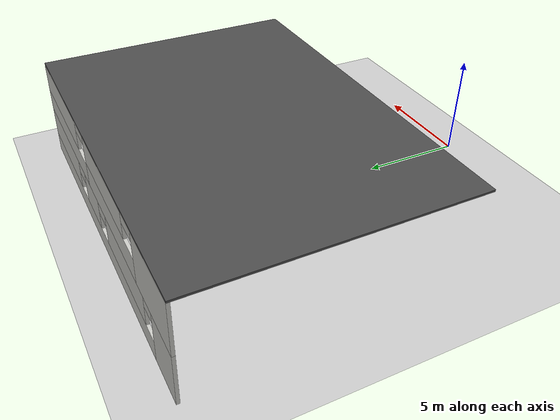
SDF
<sdf version="1.6">
 <world name="default">
  <model name="ground_plane">
   <static>1</static>
   <link name="link">
    <collision name="collision">
     <geometry><plane><normal>0 0 1</normal><size>100 100</size></plane></geometry>
     <surface>
      <contact><collide_bitmask>65535</collide_bitmask></contact>
      <friction><ode><mu>100</mu><mu2>50</mu2></ode></friction>
     </surface>
    </collision>
    <visual name="visual">
     <cast_shadows>0</cast_shadows>
     <geometry><plane><normal>0 0 1</normal><size>100 100</size></plane></geometry>
     <material>
      <script><uri>file://media/materials/scripts/gazebo.material</uri><name>Gazebo/Grey</name></script>
     </material>
    </visual>
   </link>
  </model>
  <model name="asphalt_plane">
   <static>1</static>
   <link name="link">
    <collision name="collision"><geometry><box><size>18.0246 12.9845 0.1</size></box></geometry></collision>
    <visual name="visual">
     <cast_shadows>0</cast_shadows>
     <geometry><box><size>18.0246 12.9845 0.1</size></box></geometry>
     <material>
      <script>
       <uri>model://asphalt_plane/materials/scripts</uri>
       <uri>model://asphalt_plane/materials/textures</uri>
       <name>vrc/asphalt</name>
      </script>
     </material>
    </visual>
   </link>
   <pose>0.009253 12.617 5.05625 0 -0 0</pose>
  </model>
  <model name="Indoor_Scenario1">
   <pose>0.016123 12.6195 0 0 -0 0</pose>
   <link name="Wall_2">
    <pose>-0 6.425 0 0 -0 0</pose>
    <visual name="Wall_2_Visual_0">
     <pose>-7.94017 0 1.25 0 -0 0</pose>
     <geometry><box><size>2.11966 0.15 2.5</size></box></geometry>
     <material>
      <script><uri>file://media/materials/scripts/gazebo.material</uri><name>Gazebo/CeilingTiled</name></script>
      <ambient>0.647059 0.505882 0.309804 1</ambient>
     </material>
     <meta><layer>0</layer></meta>
    </visual>
    <collision name="Wall_2_Collision_0">
     <geometry><box><size>2.11966 0.15 2.5</size></box></geometry>
     <pose>-7.94017 0 1.25 0 -0 0</pose>
    </collision>
    <visual name="Wall_2_Visual_1">
     <pose>1.05983 0 0.5 0 -0 0</pose>
     <geometry><box><size>15.8803 0.15 1</size></box></geometry>
     <material>
      <script><uri>file://media/materials/scripts/gazebo.material</uri><name>Gazebo/CeilingTiled</name></script>
      <ambient>0.647059 0.505882 0.309804 1</ambient>
     </material>
     <meta><layer>0</layer></meta>
    </visual>
    <collision name="Wall_2_Collision_1">
     <geometry><box><size>15.8803 0.15 1</size></box></geometry>
     <pose>1.05983 0 0.5 0 -0 0</pose>
    </collision>
    <visual name="Wall_2_Visual_2">
     <pose>-3.45191 0 1.75 0 -0 0</pose>
     <geometry><box><size>5.05687 0.15 1.5</size></box></geometry>
     <material>
      <script><uri>file://media/materials/scripts/gazebo.material</uri><name>Gazebo/CeilingTiled</name></script>
      <ambient>0.647059 0.505882 0.309804 1</ambient>
     </material>
     <meta><layer>0</layer></meta>
    </visual>
    <collision name="Wall_2_Collision_2">
     <geometry><box><size>5.05687 0.15 1.5</size></box></geometry>
     <pose>-3.45191 0 1.75 0 -0 0</pose>
    </collision>
    <visual name="Wall_2_Visual_3">
     <pose>1.30899 0 1.75 0 -0 0</pose>
     <geometry><box><size>2.26492 0.15 1.5</size></box></geometry>
     <material>
      <script><uri>file://media/materials/scripts/gazebo.material</uri><name>Gazebo/CeilingTiled</name></script>
      <ambient>0.647059 0.505882 0.309804 1</ambient>
     </material>
     <meta><layer>0</layer></meta>
    </visual>
    <collision name="Wall_2_Collision_3">
     <geometry><box><size>2.26492 0.15 1.5</size></box></geometry>
     <pose>1.30899 0 1.75 0 -0 0</pose>
    </collision>
    <visual name="Wall_2_Visual_4">
     <pose>6.27072 0 1.75 0 -0 0</pose>
     <geometry><box><size>5.45855 0.15 1.5</size></box></geometry>
     <material>
      <script><uri>file://media/materials/scripts/gazebo.material</uri><name>Gazebo/CeilingTiled</name></script>
      <ambient>0.647059 0.505882 0.309804 1</ambient>
     </material>
     <meta><layer>0</layer></meta>
    </visual>
    <collision name="Wall_2_Collision_4">
     <geometry><box><size>5.45855 0.15 1.5</size></box></geometry>
     <pose>6.27072 0 1.75 0 -0 0</pose>
    </collision>
    <visual name="Wall_2_Visual_5">
     <pose>-0.373475 0 1 0 -0 0</pose>
     <geometry><box><size>1.1 0.15 0.01</size></box></geometry>
     <material>
      <script><uri>file://media/materials/scripts/gazebo.material</uri><name>Gazebo/CeilingTiled</name></script>
      <ambient>0.647059 0.505882 0.309804 1</ambient>
     </material>
     <meta><layer>0</layer></meta>
    </visual>
    <collision name="Wall_2_Collision_5">
     <geometry><box><size>1.1 0.15 0.01</size></box></geometry>
     <pose>-0.373475 0 1 0 -0 0</pose>
    </collision>
    <visual name="Wall_2_Visual_6">
     <pose>2.99145 0 1 0 -0 0</pose>
     <geometry><box><size>1.1 0.15 0.01</size></box></geometry>
     <material>
      <script><uri>file://media/materials/scripts/gazebo.material</uri><name>Gazebo/CeilingTiled</name></script>
      <ambient>0.647059 0.505882 0.309804 1</ambient>
     </material>
     <meta><layer>0</layer></meta>
    </visual>
    <collision name="Wall_2_Collision_6">
     <geometry><box><size>1.1 0.15 0.01</size></box></geometry>
     <pose>2.99145 0 1 0 -0 0</pose>
    </collision>
    <visual name="Wall_2_Visual_7">
     <pose>-0.373475 0 2.2 0 -0 0</pose>
     <geometry><box><size>1.1 0.15 0.6</size></box></geometry>
     <material>
      <script><uri>file://media/materials/scripts/gazebo.material</uri><name>Gazebo/CeilingTiled</name></script>
      <ambient>0.647059 0.505882 0.309804 1</ambient>
     </material>
     <meta><layer>0</layer></meta>
    </visual>
    <collision name="Wall_2_Collision_7">
     <geometry><box><size>1.1 0.15 0.6</size></box></geometry>
     <pose>-0.373475 0 2.2 0 -0 0</pose>
    </collision>
    <visual name="Wall_2_Visual_8">
     <pose>2.99145 0 2.2 0 -0 0</pose>
     <geometry><box><size>1.1 0.15 0.6</size></box></geometry>
     <material>
      <script><uri>file://media/materials/scripts/gazebo.material</uri><name>Gazebo/CeilingTiled</name></script>
      <ambient>0.647059 0.505882 0.309804 1</ambient>
     </material>
     <meta><layer>0</layer></meta>
    </visual>
    <collision name="Wall_2_Collision_8">
     <geometry><box><size>1.1 0.15 0.6</size></box></geometry>
     <pose>2.99145 0 2.2 0 -0 0</pose>
    </collision>
    <visual name="Wall_2_Visual_9">
     <pose>-6.43034 0 2.25 0 -0 0</pose>
     <geometry><box><size>0.9 0.15 0.5</size></box></geometry>
     <material>
      <script><uri>file://media/materials/scripts/gazebo.material</uri><name>Gazebo/CeilingTiled</name></script>
      <ambient>0.647059 0.505882 0.309804 1</ambient>
     </material>
     <meta><layer>0</layer></meta>
    </visual>
    <collision name="Wall_2_Collision_9">
     <geometry><box><size>0.9 0.15 0.5</size></box></geometry>
     <pose>-6.43034 0 2.25 0 -0 0</pose>
    </collision>
   </link>
   <link name="Wall_38">
    <collision name="Wall_38_Collision">
     <geometry><box><size>2 0.15 2.5</size></box></geometry>
     <pose>0 0 1.25 0 -0 0</pose>
    </collision>
    <visual name="Wall_38_Visual">
     <pose>0 0 1.25 0 -0 0</pose>
     <geometry><box><size>2 0.15 2.5</size></box></geometry>
     <material>
      <script><uri>file://media/materials/scripts/gazebo.material</uri><name>Gazebo/CeilingTiled</name></script>
      <ambient>1 1 1 1</ambient>
     </material>
     <meta><layer>0</layer></meta>
    </visual>
    <pose>3.62002 2.50441 0 0 -0 3.14159</pose>
   </link>
   <link name="Wall_56">
    <pose>-0 6.425 2.5 0 -0 0</pose>
    <visual name="Wall_56_Visual_0">
     <pose>-7.13278 0 1.25 0 -0 0</pose>
     <geometry><box><size>3.73445 0.15 2.5</size></box></geometry>
     <material>
      <script><uri>file://media/materials/scripts/gazebo.material</uri><name>Gazebo/CeilingTiled</name></script>
      <ambient>0.647059 0.505882 0.305882 1</ambient>
     </material>
     <meta><layer>1</layer></meta>
    </visual>
    <collision name="Wall_56_Collision_0">
     <geometry><box><size>3.73445 0.15 2.5</size></box></geometry>
     <pose>-7.13278 0 1.25 0 -0 0</pose>
    </collision>
    <visual name="Wall_56_Visual_1">
     <pose>-1.88131 0 0.6 0 -0 0</pose>
     <geometry><box><size>6.7685 0.15 1.2</size></box></geometry>
     <material>
      <script><uri>file://media/materials/scripts/gazebo.material</uri><name>Gazebo/CeilingTiled</name></script>
      <ambient>0.647059 0.505882 0.305882 1</ambient>
     </material>
     <meta><layer>1</layer></meta>
    </visual>
    <collision name="Wall_56_Collision_1">
     <geometry><box><size>6.7685 0.15 1.2</size></box></geometry>
     <pose>-1.88131 0 0.6 0 -0 0</pose>
    </collision>
    <visual name="Wall_56_Visual_2">
     <pose>5.25147 0 0.55 0 -0 0</pose>
     <geometry><box><size>7.49705 0.15 1.1</size></box></geometry>
     <material>
      <script><uri>file://media/materials/scripts/gazebo.material</uri><name>Gazebo/CeilingTiled</name></script>
      <ambient>0.647059 0.505882 0.305882 1</ambient>
     </material>
     <meta><layer>1</layer></meta>
    </visual>
    <collision name="Wall_56_Collision_2">
     <geometry><box><size>7.49705 0.15 1.1</size></box></geometry>
     <pose>5.25147 0 0.55 0 -0 0</pose>
    </collision>
    <visual name="Wall_56_Visual_3">
     <pose>5.90147 0 1.8 0 -0 0</pose>
     <geometry><box><size>6.19705 0.15 1.4</size></box></geometry>
     <material>
      <script><uri>file://media/materials/scripts/gazebo.material</uri><name>Gazebo/CeilingTiled</name></script>
      <ambient>0.647059 0.505882 0.305882 1</ambient>
     </material>
     <meta><layer>1</layer></meta>
    </visual>
    <collision name="Wall_56_Collision_3">
     <geometry><box><size>6.19705 0.15 1.4</size></box></geometry>
     <pose>5.90147 0 1.8 0 -0 0</pose>
    </collision>
    <visual name="Wall_56_Visual_4">
     <pose>-1.2813 0 1.85 0 -0 0</pose>
     <geometry><box><size>5.5685 0.15 1.3</size></box></geometry>
     <material>
      <script><uri>file://media/materials/scripts/gazebo.material</uri><name>Gazebo/CeilingTiled</name></script>
      <ambient>0.647059 0.505882 0.305882 1</ambient>
     </material>
     <meta><layer>1</layer></meta>
    </visual>
    <collision name="Wall_56_Collision_4">
     <geometry><box><size>5.5685 0.15 1.3</size></box></geometry>
     <pose>-1.2813 0 1.85 0 -0 0</pose>
    </collision>
    <visual name="Wall_56_Visual_5">
     <pose>-4.66556 0 2.25 0 -0 0</pose>
     <geometry><box><size>1.2 0.15 0.5</size></box></geometry>
     <material>
      <script><uri>file://media/materials/scripts/gazebo.material</uri><name>Gazebo/CeilingTiled</name></script>
      <ambient>0.647059 0.505882 0.305882 1</ambient>
     </material>
     <meta><layer>1</layer></meta>
    </visual>
    <collision name="Wall_56_Collision_5">
     <geometry><box><size>1.2 0.15 0.5</size></box></geometry>
     <pose>-4.66556 0 2.25 0 -0 0</pose>
    </collision>
    <visual name="Wall_56_Visual_6">
     <pose>2.15295 0 2.3 0 -0 0</pose>
     <geometry><box><size>1.3 0.15 0.4</size></box></geometry>
     <material>
      <script><uri>file://media/materials/scripts/gazebo.material</uri><name>Gazebo/CeilingTiled</name></script>
      <ambient>0.647059 0.505882 0.305882 1</ambient>
     </material>
     <meta><layer>1</layer></meta>
    </visual>
    <collision name="Wall_56_Collision_6">
     <geometry><box><size>1.3 0.15 0.4</size></box></geometry>
     <pose>2.15295 0 2.3 0 -0 0</pose>
    </collision>
   </link>
   <link name="Wall_93">
    <collision name="Wall_93_Collision">
     <geometry><box><size>2.25 0.15 2.5</size></box></geometry>
     <pose>0 0 1.25 0 -0 0</pose>
    </collision>
    <visual name="Wall_93_Visual">
     <pose>0 0 1.25 0 -0 0</pose>
     <geometry><box><size>2.25 0.15 2.5</size></box></geometry>
     <material>
      <script><uri>file://media/materials/scripts/gazebo.material</uri><name>Gazebo/CeilingTiled</name></script>
      <ambient>1 1 1 1</ambient>
     </material>
     <meta><layer>1</layer></meta>
    </visual>
    <pose>4.18851 2.53292 2.5 0 -0 0</pose>
   </link>
   <static>1</static>
  </model>
 </world>
</sdf>
